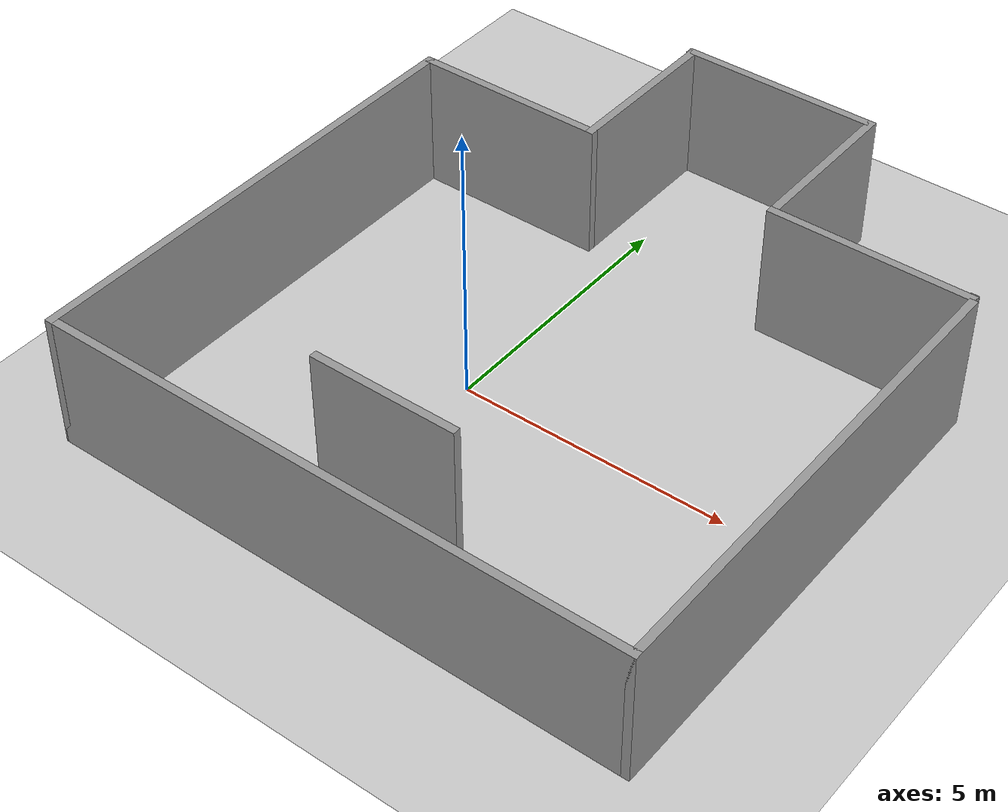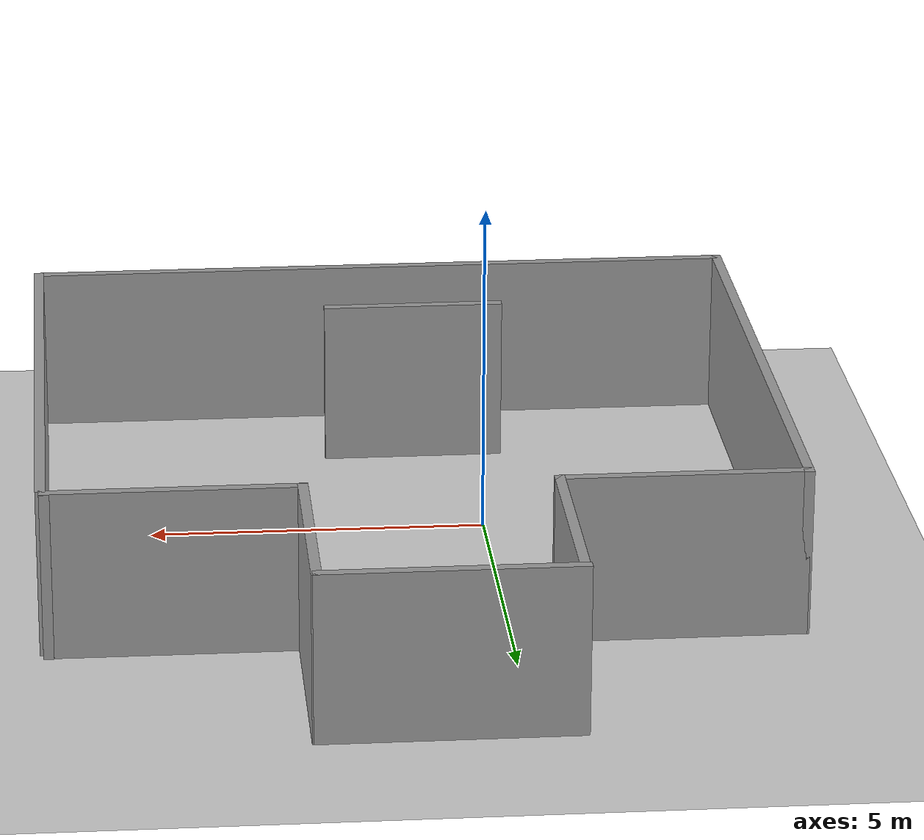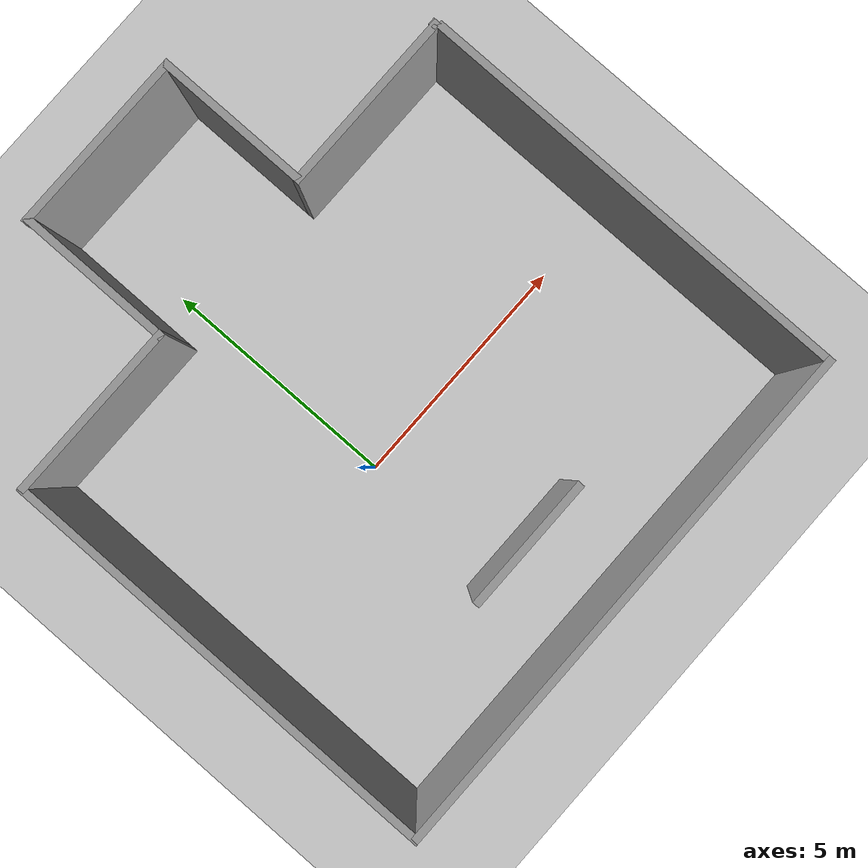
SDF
<sdf version="1.7">
 <world name="default">
  <light name="sun" type="directional">
   <pose>0 0 10 0 -0 0</pose>
   <diffuse>0.8 0.8 0.8 1</diffuse>
   <specular>0.2 0.2 0.2 1</specular>
   <attenuation>
    <range>1000</range>
    <constant>0.9</constant>
    <linear>0.01</linear>
    <quadratic>0.001</quadratic>
   </attenuation>
   <direction>-0.5 0.1 -0.9</direction>
   <spot><inner_angle>0</inner_angle><outer_angle>0</outer_angle><falloff>0</falloff></spot>
  </light>
  <model name="ground_plane">
   <static>1</static>
   <link name="link">
    <collision name="collision">
     <geometry><plane><normal>0 0 1</normal><size>100 100</size></plane></geometry>
     <surface>
      <contact><collide_bitmask>65535</collide_bitmask></contact>
      <friction><ode><mu>100</mu><mu2>50</mu2></ode></friction>
     </surface>
    </collision>
    <visual name="visual">
     <cast_shadows>0</cast_shadows>
     <geometry><plane><normal>0 0 1</normal><size>100 100</size></plane></geometry>
     <material>
      <script><uri>file://media/materials/scripts/gazebo.material</uri><name>Gazebo/Grey</name></script>
     </material>
    </visual>
   </link>
  </model>
  <gravity>0 0 -9.8</gravity>
  <magnetic_field>6e-06 2.3e-05 -4.2e-05</magnetic_field>
  <atmosphere type="adiabatic"/>
  <physics type="ode">
   <max_step_size>0.001</max_step_size>
   <real_time_factor>1</real_time_factor>
   <real_time_update_rate>1000</real_time_update_rate>
  </physics>
  <scene><ambient>0.4 0.4 0.4 1</ambient><background>0.7 0.7 0.7 1</background><shadows>1</shadows></scene>
  <spherical_coordinates>
   <surface_model>EARTH_WGS84</surface_model>
   <latitude_deg>0</latitude_deg>
   <longitude_deg>0</longitude_deg>
   <elevation>0</elevation>
   <heading_deg>0</heading_deg>
  </spherical_coordinates>
  <model name="test">
   <pose>1.21433 1.24954 0 0 -0 0</pose>
   <link name="Wall_1">
    <collision name="Wall_1_Collision">
     <geometry><box><size>10.8907 0.15 2.5</size></box></geometry>
     <pose>0 0 1.25 0 -0 0</pose>
    </collision>
    <visual name="Wall_1_Visual">
     <pose>0 0 1.25 0 -0 0</pose>
     <geometry><box><size>10.8907 0.15 2.5</size></box></geometry>
     <material>
      <script><uri>file://media/materials/scripts/gazebo.material</uri><name>Gazebo/Grey</name></script>
      <ambient>1 1 1 1</ambient>
     </material>
     <meta><layer>0</layer></meta>
    </visual>
    <pose>0.015295 -5.99954 0 0 -0 0</pose>
   </link>
   <link name="Wall_10">
    <collision name="Wall_10_Collision">
     <geometry><box><size>0.15 0.15 2.5</size></box></geometry>
     <pose>0 0 1.25 0 -0 0</pose>
    </collision>
    <visual name="Wall_10_Visual">
     <pose>0 0 1.25 0 -0 0</pose>
     <geometry><box><size>0.15 0.15 2.5</size></box></geometry>
     <material>
      <script><uri>file://media/materials/scripts/gazebo.material</uri><name>Gazebo/Grey</name></script>
      <ambient>1 1 1 1</ambient>
     </material>
     <meta><layer>0</layer></meta>
    </visual>
    <pose>5.33566 2.97706 0 0 -0 0</pose>
   </link>
   <link name="Wall_14">
    <collision name="Wall_14_Collision">
     <geometry><box><size>9.1 0.15 2.5</size></box></geometry>
     <pose>0 0 1.25 0 -0 0</pose>
    </collision>
    <visual name="Wall_14_Visual">
     <pose>0 0 1.25 0 -0 0</pose>
     <geometry><box><size>9.1 0.15 2.5</size></box></geometry>
     <material>
      <script><uri>file://media/materials/scripts/gazebo.material</uri><name>Gazebo/Grey</name></script>
      <ambient>1 1 1 1</ambient>
     </material>
     <meta><layer>0</layer></meta>
    </visual>
    <pose>-5.38567 -1.52454 0 0 -0 -1.5708</pose>
   </link>
   <link name="Wall_16">
    <collision name="Wall_16_Collision">
     <geometry><box><size>9 0.15 2.5</size></box></geometry>
     <pose>0 0 1.25 0 -0 0</pose>
    </collision>
    <visual name="Wall_16_Visual">
     <pose>0 0 1.25 0 -0 0</pose>
     <geometry><box><size>9 0.15 2.5</size></box></geometry>
     <material>
      <script><uri>file://media/materials/scripts/gazebo.material</uri><name>Gazebo/Grey</name></script>
      <ambient>1 1 1 1</ambient>
     </material>
     <meta><layer>0</layer></meta>
    </visual>
    <pose>5.38567 -1.57454 0 0 -0 1.5708</pose>
   </link>
   <link name="Wall_27">
    <collision name="Wall_27_Collision">
     <geometry><box><size>2.75 0.15 2.5</size></box></geometry>
     <pose>0 0 1.25 0 -0 0</pose>
    </collision>
    <visual name="Wall_27_Visual">
     <pose>0 0 1.25 0 -0 0</pose>
     <geometry><box><size>2.75 0.15 2.5</size></box></geometry>
     <material>
      <script><uri>file://media/materials/scripts/gazebo.material</uri><name>Gazebo/Grey</name></script>
      <ambient>1 1 1 1</ambient>
     </material>
     <meta><layer>0</layer></meta>
    </visual>
    <pose>-0.382592 -4.17101 0 0 -0 3.14159</pose>
   </link>
   <link name="Wall_5">
    <collision name="Wall_5_Collision">
     <geometry><box><size>3.64074 0.15 2.5</size></box></geometry>
     <pose>0 0 1.25 0 -0 0</pose>
    </collision>
    <visual name="Wall_5_Visual">
     <pose>0 0 1.25 0 -0 0</pose>
     <geometry><box><size>3.64074 0.15 2.5</size></box></geometry>
     <material>
      <script><uri>file://media/materials/scripts/gazebo.material</uri><name>Gazebo/Grey</name></script>
      <ambient>1 1 1 1</ambient>
     </material>
     <meta><layer>0</layer></meta>
    </visual>
    <pose>-3.6097 2.95046 0 0 -0 0</pose>
   </link>
   <link name="Wall_6">
    <collision name="Wall_6_Collision">
     <geometry><box><size>3.19907 0.15 2.5</size></box></geometry>
     <pose>0 0 1.25 0 -0 0</pose>
    </collision>
    <visual name="Wall_6_Visual">
     <pose>0 0 1.25 0 -0 0</pose>
     <geometry><box><size>3.19907 0.15 2.5</size></box></geometry>
     <material>
      <script><uri>file://media/materials/scripts/gazebo.material</uri><name>Gazebo/Grey</name></script>
      <ambient>1 1 1 1</ambient>
     </material>
     <meta><layer>0</layer></meta>
    </visual>
    <pose>-1.86434 4.475 0 0 -0 1.5708</pose>
   </link>
   <link name="Wall_7">
    <collision name="Wall_7_Collision">
     <geometry><box><size>3.75 0.15 2.5</size></box></geometry>
     <pose>0 0 1.25 0 -0 0</pose>
    </collision>
    <visual name="Wall_7_Visual">
     <pose>0 0 1.25 0 -0 0</pose>
     <geometry><box><size>3.75 0.15 2.5</size></box></geometry>
     <material>
      <script><uri>file://media/materials/scripts/gazebo.material</uri><name>Gazebo/Grey</name></script>
      <ambient>1 1 1 1</ambient>
     </material>
     <meta><layer>0</layer></meta>
    </visual>
    <pose>-0.084449 5.99954 0 0 -0 0</pose>
   </link>
   <link name="Wall_8">
    <collision name="Wall_8_Collision">
     <geometry><box><size>3.17247 0.15 2.5</size></box></geometry>
     <pose>0 0 1.25 0 -0 0</pose>
    </collision>
    <visual name="Wall_8_Visual">
     <pose>0 0 1.25 0 -0 0</pose>
     <geometry><box><size>3.17247 0.15 2.5</size></box></geometry>
     <material>
      <script><uri>file://media/materials/scripts/gazebo.material</uri><name>Gazebo/Grey</name></script>
      <ambient>1 1 1 1</ambient>
     </material>
     <meta><layer>0</layer></meta>
    </visual>
    <pose>1.73567 4.4883 0 0 -0 -1.5708</pose>
   </link>
   <link name="Wall_9">
    <collision name="Wall_9_Collision">
     <geometry><box><size>3.75 0.15 2.5</size></box></geometry>
     <pose>0 0 1.25 0 -0 0</pose>
    </collision>
    <visual name="Wall_9_Visual">
     <pose>0 0 1.25 0 -0 0</pose>
     <geometry><box><size>3.75 0.15 2.5</size></box></geometry>
     <material>
      <script><uri>file://media/materials/scripts/gazebo.material</uri><name>Gazebo/Grey</name></script>
      <ambient>1 1 1 1</ambient>
     </material>
     <meta><layer>0</layer></meta>
    </visual>
    <pose>3.53566 2.95695 0 0 -0 0</pose>
   </link>
   <static>1</static>
  </model>
 </world>
</sdf>
